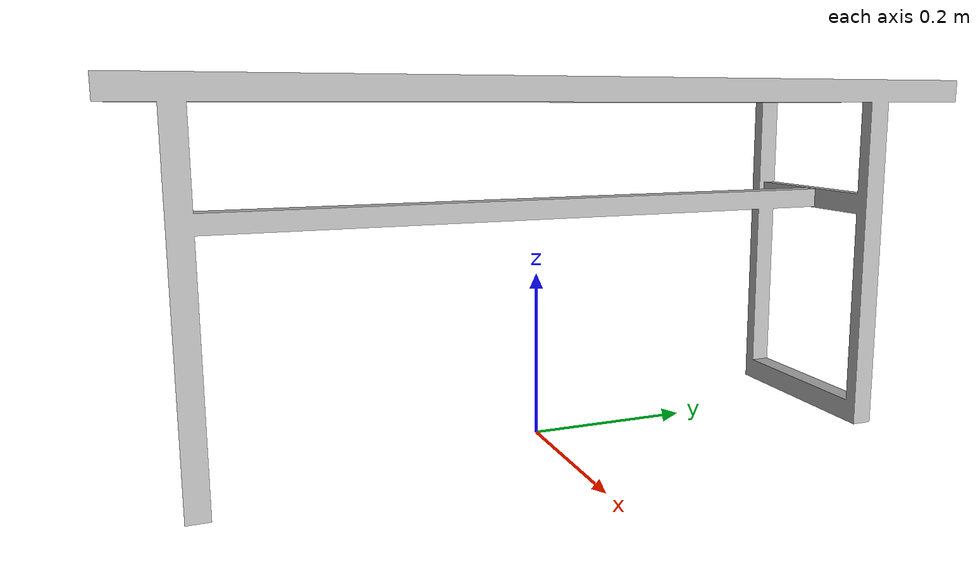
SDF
<?xml version='1.0' encoding='utf-8'?>
<sdf version="1.6">
  <model name="FoodCourtBenchShort">
   <static>true</static>
    <link name="body">
      <pose>0 0 0 0 0 0</pose>

      <visual name="visual">
        <geometry>
          <mesh>
            <uri>model://FoodCourtBenchShort/meshes/FoodCourtBenchShort.obj</uri>
          </mesh>
        </geometry>
      </visual>

      <collision name="collision">
        <geometry>
          <mesh>
            <uri>model://FoodCourtBenchShort/meshes/FoodCourtBenchShort_Col.obj</uri>
          </mesh>
        </geometry>
      </collision>

    </link>
  </model>
</sdf>
